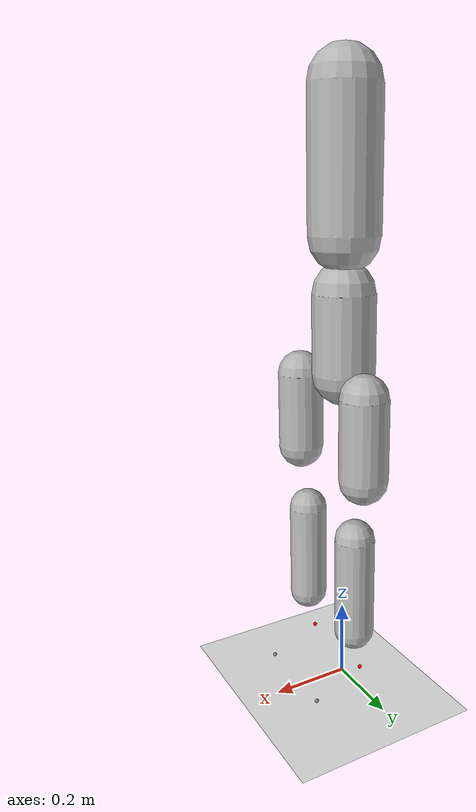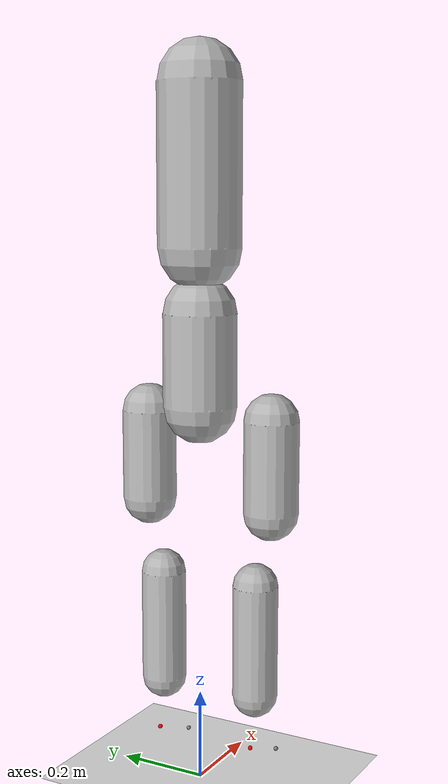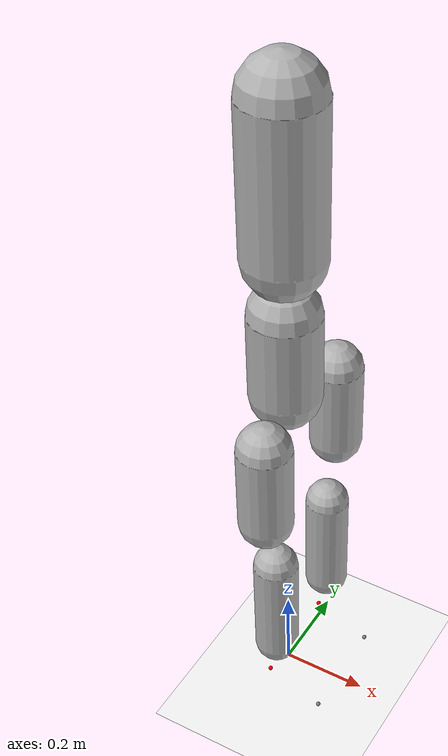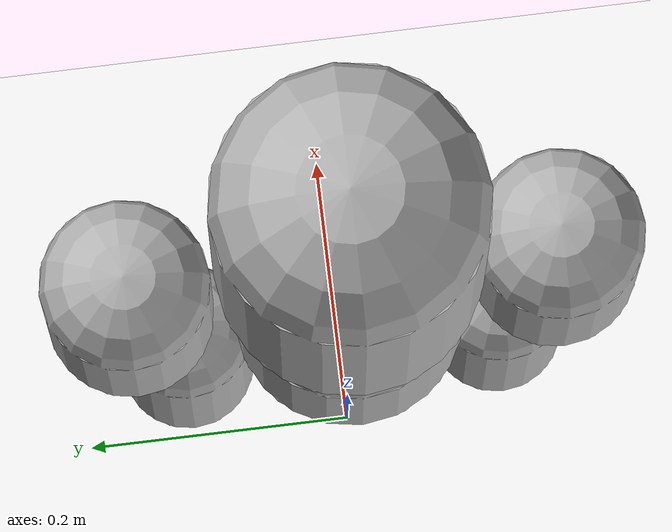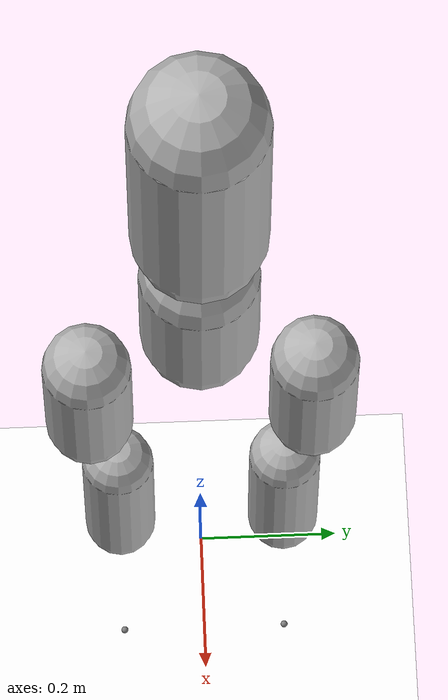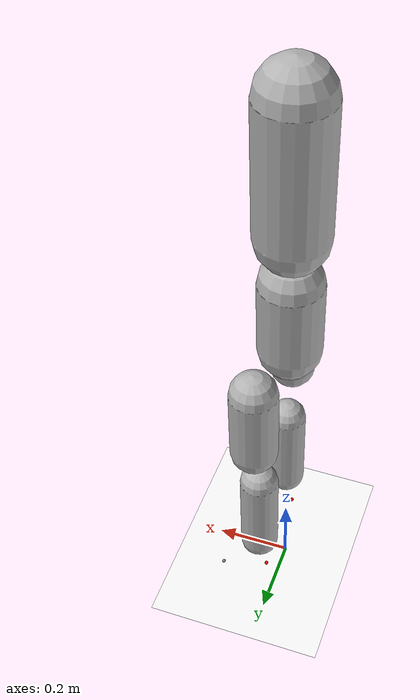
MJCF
<mujoco model="adam_lite_minimal scene">
    <include file="adam_lite_ultra_minimal.xml"/>

    <statistic center="0 0 0.7" extent="1.2" meansize="0.04"/>

    <visual>
        <headlight diffuse=".8 .8 .8" ambient=".2 .2 .2" specular="1 1 1"/>
        <rgba force="1 0 0 1"/>
        <global azimuth="140" elevation="-20"/>
        <map force="0.01"/>
        <scale forcewidth="0.3" contactwidth="0.5" contactheight="0.2"/>
        <quality shadowsize="8192"/>
    </visual>

    <asset>
        <texture type="skybox" builtin="gradient" rgb1="1 1 1" rgb2="1 1 1" width="800" height="800"/>
        <texture type="2d" name="groundplane" builtin="checker" mark="edge" rgb1="1 1 1" rgb2="1 1 1"
                 markrgb="0 0 0" width="300" height="300"/>
        <material name="groundplane" texture="groundplane" texuniform="true" texrepeat="5 5" reflectance="0"/>
    </asset>

    <worldbody>
        <geom name="floor" size="0 0 0.01" type="plane" material="groundplane"/>
    </worldbody>
</mujoco>

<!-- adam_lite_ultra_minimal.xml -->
<mujoco model="adam_lite_ultra_minimal">

  <compiler angle="radian" />

  <default>
    <default class="adam_lite">
      <geom condim="1" contype="0" conaffinity="0"/>
      <joint damping="0.05" armature="0.01" frictionloss="0.2"/>

      <default class="hip">
        <default class="hip_pitch">
          <joint axis="0 1 0" range="-2.164 2.164" actuatorfrcrange="-230 230" armature="0.01"/>
        </default>
        <default class="hip_roll">
          <joint axis="1 0 0" actuatorfrcrange="-160 160" armature="0.01"/>
        </default>
        <default class="hip_yaw">
          <joint axis="0 0 1" range="-0.785 0.785" actuatorfrcrange="-105 105" armature="0.01"/>
        </default>
      </default>
      <default class="knee">
        <joint axis="0 1 0" range="0.052 2.391" actuatorfrcrange="-230 230" armature="0.01"/>
      </default>
      <default class="ankle">
        <default class="ankle_pitch">
          <joint axis="0 1 0" range="-1 0.35" actuatorfrcrange="-40 40" armature="0.01"/>
        </default>
        <default class="ankle_roll">
          <joint axis="1 0 0" range="-0.3491 0.3491" actuatorfrcrange="-12 12" armature="0.01"/>
        </default>
      </default>
      <default class="waist">
        <default class="waist_roll">
          <joint axis="1 0 0" range="-0.279 0.279" actuatorfrcrange="-110 110" armature="0.01"/>
        </default>
        <default class="waist_pitch">
          <joint axis="0 1 0" range="-0.663 1.361" actuatorfrcrange="-110 110" armature="0.01"/>
        </default>
        <default class="waist_yaw">
          <joint axis="0 0 1" range="-0.829 0.829" actuatorfrcrange="-110 110" armature="0.01"/>
        </default>
      </default>
      <default class="shoulder">
        <default class="shoulder_pitch">
          <joint axis="0 1 0" range="-3.613 2.042" actuatorfrcrange="-65 65" armature="0.01"/>
        </default>
        <default class="shoulder_roll">
          <joint axis="1 0 0" actuatorfrcrange="-65 65" armature="0.01"/>
        </default>
        <default class="shoulder_yaw">
          <joint axis="0 0 1" range="-2.583 2.583" actuatorfrcrange="-65 65" armature="0.01"/>
        </default>
      </default>
      <default class="elbow">
        <joint axis="0 1 0" range="-2.496 0.209" actuatorfrcrange="-30 30" armature="0.01"/>
      </default>

      <default class="visual">
        <geom group="2" type="capsule" density="0" rgba="0.7 0.7 0.7 1"/>
      </default>
      <default class="collision">
        <geom group="3" rgba=".2 .6 .2 .3"/>
        <default class="foot">
          <geom size="0.1 0.04 0.005"/>
        </default>
      </default>
      <site group="5" rgba="1 0 0 1"/>
    </default>
  </default>

  <worldbody>
    <body name="pelvis" pos="0 0 0.95">
      <inertial pos="-0.00034724 0 -0.00735759" quat="0.502838 0.502859 -0.497127 0.497143" mass="10.3565" diaginertia="0.0687803 0.0621174 0.0345151" />
      <freejoint name="root"/>
      <geom class="visual" type="capsule" size="0.08" fromto="0 0 -0.1 0 0 0.1"/>
      <geom name="pelvis_collision" class="collision" type="sphere" size="0.08" pos="0 0 -0.08" contype="1" conaffinity="0"/>
      <site name="imu_in_pelvis" pos="0 0 0" />

      <!-- 左腿 -->
      <body name="hipPitchLeft" pos="0 0.0961925 -0.0332412" quat="0.953717 -0.300706 0 0">
        <inertial pos="-0.0566022 0.0576144 -0.00077159" quat="-0.0505313 0.548334 -0.448358 0.704097" mass="2.2338" diaginertia="0.00520115 0.00510328 0.00286381" />
        <joint name="hipPitch_Left" pos="0 0 0" axis="0 1 0" range="-2.164 2.164" actuatorfrcrange="-230 230" />
        <body name="hipRollLeft" pos="-0.0255 0.069 0" quat="0.953717 0.300706 0 0">
          <inertial pos="0.0392416 4.107e-05 -0.0103292" quat="0.0275849 0.82035 0.0241895 0.570683" mass="1.35108" diaginertia="0.00141452 0.00129056 0.00119603" />
          <joint name="hipRoll_Left" pos="0 0 0" axis="1 0 0" range="-0.733 1.605" actuatorfrcrange="-160 160" />
          <body name="thighLeft" pos="0.044 0 -0.0525">
            <inertial pos="0.00244052 -0.00866423 -0.134336" quat="0.711611 -0.0492483 0.0272749 0.700315" mass="6.43433" diaginertia="0.0639418 0.0583116 0.0126694" />
            <joint name="hipYaw_Left" pos="0 0 0" axis="0 0 1" range="-0.785 0.785" actuatorfrcrange="-105 105" />
            <geom class="visual" type="capsule" size="0.06" fromto="0.02 0 0 0.02 0 -0.20"/>
            <geom name="left_thigh" class="collision" type="capsule" size="0.06" fromto="0.02 0 0 0.02 0 -0.20"/>
            <body name="shinLeft" pos="0 -0.0355 -0.369">
              <inertial pos="-0.00053135 0.00081959 -0.145381" quat="0.788039 0.00408898 0.00696215 0.615572" mass="2.25363" diaginertia="0.0215921 0.0215141 0.00136466" />
              <joint name="kneePitch_Left" pos="0 0 0" axis="0 1 0" range="0.052 2.391" actuatorfrcrange="-230 230" />
              <geom class="visual" type="capsule" size="0.05" fromto="0.02 0 0 0.02 0 -0.25"/>
              <geom name="left_shin" class="collision" type="capsule" size="0.06" fromto="0.02 0 0 0.02 0 -0.25"/>
              <body name="anklePitchLeft" pos="0 0 -0.37">
                <inertial pos="0 0 0" mass="0.0301423" diaginertia="3.14e-06 3.14e-06 2.04e-06" />
                <joint name="anklePitch_Left" pos="0 0 0" axis="0 1 0" range="-1 0.35" actuatorfrcrange="-40 40" />
                <body name="toeLeft">
                  <site name="left_foot" rgba="1 0 0 1"/>
                  <site name="left_foot_top" pos="0.13 0 -0.054"/>
                  <inertial pos="0.0374997 -4.016e-05 -0.0419674" quat="-0.0209271 0.743591 -0.0168677 0.668094" mass="0.634796" diaginertia="0.00233488 0.00226889 0.000434699" />
                  <joint name="ankleRoll_Left" pos="0 0 0" axis="1 0 0" range="-0.3491 0.3491" actuatorfrcrange="-12 12" />
                  <geom name="left_foot" class="foot" size="0.12 0.05 0.01" pos="0.05 0 -0.055" type="box" rgba="0.752941 0.752941 0.752941 1" />
                </body>
              </body>
            </body>
          </body>
        </body>
      </body>

      <!-- 右腿 -->
      <body name="hipPitchRight" pos="0 -0.0961925 -0.0332412" quat="0.953717 0.300706 0 0">
        <inertial pos="-0.0566179 -0.0575934 -0.00078211" quat="0.0466125 0.551069 0.444978 0.704376" mass="2.23477" diaginertia="0.00520391 0.00510426 0.00286722" />
        <joint name="hipPitch_Right" pos="0 0 0" axis="0 1 0" range="-2.164 2.164" actuatorfrcrange="-230 230" />
        <body name="hipRollRight" pos="-0.0255 -0.069 0" quat="0.953717 -0.300706 0 0">
          <inertial pos="0.0392598 -5.814e-05 -0.0103241" quat="-0.02931 0.821547 -0.0263648 0.568776" mass="1.3517" diaginertia="0.00141668 0.00129138 0.00119538" />
          <joint name="hipRoll_Right" pos="0 0 0" axis="1 0 0" range="-1.605 0.733" actuatorfrcrange="-160 160" />
          <body name="thighRight" pos="0.044 0 -0.0525">
            <inertial pos="0.00245598 0.00865064 -0.134332" quat="0.700408 0.0274534 -0.0491764 0.711517" mass="6.43084" diaginertia="0.0639169 0.0582708 0.0126767" />
            <joint name="hipYaw_Right" pos="0 0 0" axis="0 0 1" range="-0.785 0.785" actuatorfrcrange="-105 105" />
            <geom class="visual" type="capsule" size="0.06" fromto="0.02 0 0 0.02 0 -0.20"/>
            <geom name="right_thigh" class="collision" type="capsule" size="0.06" fromto="0.02 0 0 0.02 0 -0.20"/>
            <body name="shinRight" pos="0 0.0355 -0.369">
              <inertial pos="-0.00052844 -0.00082152 -0.145334" quat="0.619488 0.00695186 0.00407547 0.784965" mass="2.25459" diaginertia="0.0215721 0.021496 0.00136482" />
              <joint name="kneePitch_Right" pos="0 0 0" axis="0 1 0" range="0.052 2.391" actuatorfrcrange="-230 230" />
              <geom class="visual" type="capsule" size="0.05" fromto="0.02 0 0 0.02 0 -0.25"/>
              <geom name="right_shin" class="collision" type="capsule" size="0.06" fromto="0.02 0 0 0.02 0 -0.25"/>
              <body name="anklePitchRight" pos="0 0 -0.37">
                <inertial pos="0 0 0" mass="0.0301423" diaginertia="3.14e-06 3.14e-06 2.04e-06" />
                <joint name="anklePitch_Right" pos="0 0 0" axis="0 1 0" range="-1 0.35" actuatorfrcrange="-40 40" />
                <body name="toeRight">
                  <site name="right_foot" rgba="1 0 0 1"/>
                  <site name="right_foot_top" pos="0.13 0 -0.054"/>
                  <inertial pos="0.0375023 4.002e-05 -0.0419671" quat="0.0209768 0.743592 0.0169235 0.66809" mass="0.634808" diaginertia="0.00233489 0.00226889 0.000434726" />
                  <joint name="ankleRoll_Right" pos="0 0 0" axis="1 0 0" range="-0.3491 0.3491" actuatorfrcrange="-12 12" />
                  <geom name="right_foot" class="foot" size="0.12 0.05 0.01" pos="0.05 0 -0.055" type="box" rgba="0.752941 0.752941 0.752941 1" />
                </body>
              </body>
            </body>
          </body>
        </body>
      </body>

      <!-- 躯干 -->
      <body name="waistRoll_link" pos="0 0 0.044">
        <inertial pos="0.00093826 0.00093832 0.0399999" quat="0.920274 -0.012433 -0.0050157 0.391045" mass="2.36268" diaginertia="0.00543214 0.00543129 0.00184735" />
        <joint name="waistRoll" pos="0 0 0" axis="1 0 0" range="-0.279 0.279" actuatorfrcrange="-110 110" />
        <body name="waistPitch_link" pos="0 0 0.08">
          <inertial pos="-8.401e-05 0.00189362 0.0254832" quat="0.480284 0.467519 -0.524152 0.525374" mass="0.563538" diaginertia="0.0015597 0.00151436 0.000672504" />
          <joint name="waistPitch" pos="0 0 0" axis="0 1 0" range="-0.663 1.361" actuatorfrcrange="-110 110" />
          <body name="torso" pos="0 0.0005 0.053">
            <inertial pos="-0.00183601 0.00056583 0.166624" quat="0.999918 0.00136566 0.0120111 0.00418418" mass="13.4634" diaginertia="0.211446 0.168649 0.0770067" />
            <joint name="waistYaw" pos="0 0 0" axis="0 0 1" range="-0.829 0.829" actuatorfrcrange="-110 110" />
            <geom class="visual" type="capsule" size="0.09" fromto="0 0 0.06 0 0 0.40"/>
            <geom name="torso" class="collision" type="capsule" size="0.09" fromto="0 0 0.06 0 0 0.40"/>

            <!-- 简化的上肢 - 只保留关节，无视觉mesh -->
            <body name="shoulderPitchLeft" pos="0 0.165094 0.25923" quat="0.984808 0.173648 0 0">
              <inertial pos="0.00542694 0.0268987 0.00010792" quat="-0.0545235 0.707235 0.0545271 0.702761" mass="0.216148" diaginertia="0.000380648 0.000322754 0.000187228" />
              <joint name="shoulderPitch_Left" pos="0 0 0" axis="0 1 0" range="-3.613 2.042" actuatorfrcrange="-65 65" />
              <body name="shoulderRollLeft" pos="0.0362 0.0435 0" quat="0.984808 -0.173648 0 0">
                <inertial pos="-0.0343733 0.00962154 -0.0154456" quat="0.942019 0.255487 0.0666284 -0.207093" mass="1.07882" diaginertia="0.00167363 0.00165995 0.000668084" />
                <joint name="shoulderRoll_Left" pos="0 0 0" axis="1 0 0" range="-0.628 2.793" actuatorfrcrange="-65 65" />
                <body name="shoulderYawLeft" pos="-0.0362 0.034 -0.0797">
                  <inertial pos="-0.00051421 -0.00044442 -0.0619328" quat="0.999912 -0.00948825 0.00877343 0.00302026" mass="0.90142" diaginertia="0.00328641 0.0031732 0.000574119" />
                  <joint name="shoulderYaw_Left" pos="0 0 0" axis="0 0 1" range="-2.583 2.583" actuatorfrcrange="-65 65" />
                  <body name="elbowLeft" pos="0 -0.0285 -0.18295">
                    <inertial pos="-0.0140727 0.0292971 -0.0253473" quat="0.716894 0.14594 0.188043 0.65529" mass="0.917707" diaginertia="0.00110505 0.00109887 0.000457654" />
                    <joint name="elbow_Left" pos="0 0 0" axis="0 1 0" range="-2.496 0.209" actuatorfrcrange="-30 30" />
                    <body name="wristYawLeft" pos="-0.025 0.0285 -0.0729">
                      <inertial pos="-1.685e-05 8.017e-05 -0.15736" quat="0.697434 0.000132018 -0.000320426 0.716649" mass="0.732343" diaginertia="0.00737681 0.00737465 0.000274077" />
                      <joint name="wristYaw_Left" pos="0 0 0" axis="0 0 1" actuatorfrcrange="-6.4 6.4" />
                    </body>
                  </body>
                </body>
              </body>
            </body>

            <body name="shoulderPitchRight" pos="0 -0.165094 0.25923" quat="0.984808 -0.173648 0 0">
              <inertial pos="0.00536737 -0.0269397 0.00010693" quat="0.0534521 0.70731 -0.0534944 0.702847" mass="0.216487" diaginertia="0.000381338 0.000323123 0.000187559" />
              <joint name="shoulderPitch_Right" pos="0 0 0" axis="0 1 0" range="-3.613 2.042" actuatorfrcrange="-65 65" />
              <body name="shoulderRollRight" pos="0.0362 -0.0435 0" quat="0.984808 0.173648 0 0">
                <inertial pos="-0.0342995 -0.00987424 -0.0157184" quat="0.935991 -0.254513 0.072526 0.232131" mass="1.08875" diaginertia="0.0017015 0.00168047 0.000675786" />
                <joint name="shoulderRoll_Right" pos="0 0 0" axis="1 0 0" range="-2.793 0.628" actuatorfrcrange="-65 65" />
                <body name="shoulderYawRight" pos="-0.0362 -0.034 -0.0797">
                  <inertial pos="-0.00051421 0.00044442 -0.0619328" quat="0.999912 0.00948825 -0.00877343 -0.00302026" mass="0.90142" diaginertia="0.00328641 0.0031732 0.000574119" />
                  <joint name="shoulderYaw_Right" pos="0 0 0" axis="0 0 1" range="-2.583 2.583" actuatorfrcrange="-65 65" />
                  <body name="elbowRight" pos="0 0.0285 -0.18295">
                    <inertial pos="-0.0140891 -0.0292958 -0.0253475" quat="0.638945 0.191038 0.141578 0.73158" mass="0.917707" diaginertia="0.00110466 0.00109851 0.000457521" />
                    <joint name="elbow_Right" pos="0 0 0" axis="0 1 0" range="-2.496 0.209" actuatorfrcrange="-30 30" />
                    <body name="wristYawRight" pos="-0.025 -0.0285 -0.0729">
                      <inertial pos="1.828e-05 -7.309e-05 -0.156668" quat="0.707356 -0.000166244 0.000366098 0.706857" mass="0.732844" diaginertia="0.00727528 0.00727317 0.000274245" />
                      <joint name="wristYaw_Right" pos="0 0 0" axis="0 0 1" actuatorfrcrange="-6.4 6.4" />
                    </body>
                  </body>
                </body>
              </body>
            </body>
          </body>
        </body>
      </body>
    </body>
  </worldbody>

  <actuator>
    <motor name="hipPitch_Left" joint="hipPitch_Left" gear="1"/>
    <motor name="hipRoll_Left" joint="hipRoll_Left" gear="1"/>
    <motor name="hipYaw_Left" joint="hipYaw_Left" gear="1"/>
    <motor name="kneePitch_Left" joint="kneePitch_Left" gear="1"/>
    <motor name="anklePitch_Left" joint="anklePitch_Left" gear="1"/>
    <motor name="ankleRoll_Left" joint="ankleRoll_Left" gear="1"/>
    <motor name="hipPitch_Right" joint="hipPitch_Right" gear="1"/>
    <motor name="hipRoll_Right" joint="hipRoll_Right" gear="1"/>
    <motor name="hipYaw_Right" joint="hipYaw_Right" gear="1"/>
    <motor name="kneePitch_Right" joint="kneePitch_Right" gear="1"/>
    <motor name="anklePitch_Right" joint="anklePitch_Right" gear="1"/>
    <motor name="ankleRoll_Right" joint="ankleRoll_Right" gear="1"/>
    <motor name="waistRoll" joint="waistRoll" gear="1"/>
    <motor name="waistPitch" joint="waistPitch" gear="1"/>
    <motor name="waistYaw" joint="waistYaw" gear="1"/>
    <motor name="shoulderPitch_Left" joint="shoulderPitch_Left" gear="1"/>
    <motor name="shoulderRoll_Left" joint="shoulderRoll_Left" gear="1"/>
    <motor name="shoulderYaw_Left" joint="shoulderYaw_Left" gear="1"/>
    <motor name="elbow_Left" joint="elbow_Left" gear="1"/>
    <motor name="wristYaw_Left" joint="wristYaw_Left" gear="1"/>
    <motor name="shoulderPitch_Right" joint="shoulderPitch_Right" gear="1"/>
    <motor name="shoulderRoll_Right" joint="shoulderRoll_Right" gear="1"/>
    <motor name="shoulderYaw_Right" joint="shoulderYaw_Right" gear="1"/>
    <motor name="elbow_Right" joint="elbow_Right" gear="1"/>
    <motor name="wristYaw_Right" joint="wristYaw_Right" gear="1"/>
  </actuator>

  <sensor>
    <jointpos name="pos_hipPitch_Left" joint="hipPitch_Left" />
    <jointpos name="pos_hipRoll_Left" joint="hipRoll_Left" />
    <jointpos name="pos_hipYaw_Left" joint="hipYaw_Left" />
    <jointpos name="pos_kneePitch_Left" joint="kneePitch_Left" />
    <jointpos name="pos_anklePitch_Left" joint="anklePitch_Left" />
    <jointpos name="pos_ankleRoll_Left" joint="ankleRoll_Left" />
    <jointpos name="pos_hipPitch_Right" joint="hipPitch_Right" />
    <jointpos name="pos_hipRoll_Right" joint="hipRoll_Right" />
    <jointpos name="pos_hipYaw_Right" joint="hipYaw_Right" />
    <jointpos name="pos_kneePitch_Right" joint="kneePitch_Right" />
    <jointpos name="pos_anklePitch_Right" joint="anklePitch_Right" />
    <jointpos name="pos_ankleRoll_Right" joint="ankleRoll_Right" />
    <jointpos name="pos_waistRoll" joint="waistRoll" />
    <jointpos name="pos_waistPitch" joint="waistPitch" />
    <jointpos name="pos_waistYaw" joint="waistYaw" />
    <jointpos name="pos_shoulderPitch_Left" joint="shoulderPitch_Left" />
    <jointpos name="pos_shoulderRoll_Left" joint="shoulderRoll_Left" />
    <jointpos name="pos_shoulderYaw_Left" joint="shoulderYaw_Left" />
    <jointpos name="pos_elbow_Left" joint="elbow_Left" />
    <jointpos name="pos_wristYaw_Left" joint="wristYaw_Left" />
    <jointpos name="pos_shoulderPitch_Right" joint="shoulderPitch_Right" />
    <jointpos name="pos_shoulderRoll_Right" joint="shoulderRoll_Right" />
    <jointpos name="pos_shoulderYaw_Right" joint="shoulderYaw_Right" />
    <jointpos name="pos_elbow_Right" joint="elbow_Right" />
    <jointpos name="pos_wristYaw_Right" joint="wristYaw_Right" />
    <jointvel name="vel_hipPitch_Left" joint="hipPitch_Left" />
    <jointvel name="vel_hipRoll_Left" joint="hipRoll_Left" />
    <jointvel name="vel_hipYaw_Left" joint="hipYaw_Left" />
    <jointvel name="vel_kneePitch_Left" joint="kneePitch_Left" />
    <jointvel name="vel_anklePitch_Left" joint="anklePitch_Left" />
    <jointvel name="vel_ankleRoll_Left" joint="ankleRoll_Left" />
    <jointvel name="vel_hipPitch_Right" joint="hipPitch_Right" />
    <jointvel name="vel_hipRoll_Right" joint="hipRoll_Right" />
    <jointvel name="vel_hipYaw_Right" joint="hipYaw_Right" />
    <jointvel name="vel_kneePitch_Right" joint="kneePitch_Right" />
    <jointvel name="vel_anklePitch_Right" joint="anklePitch_Right" />
    <jointvel name="vel_ankleRoll_Right" joint="ankleRoll_Right" />
    <jointvel name="vel_waistRoll" joint="waistRoll" />
    <jointvel name="vel_waistPitch" joint="waistPitch" />
    <jointvel name="vel_waistYaw" joint="waistYaw" />
    <jointvel name="vel_shoulderPitch_Left" joint="shoulderPitch_Left" />
    <jointvel name="vel_shoulderRoll_Left" joint="shoulderRoll_Left" />
    <jointvel name="vel_shoulderYaw_Left" joint="shoulderYaw_Left" />
    <jointvel name="vel_elbow_Left" joint="elbow_Left" />
    <jointvel name="vel_wristYaw_Left" joint="wristYaw_Left" />
    <jointvel name="vel_shoulderPitch_Right" joint="shoulderPitch_Right" />
    <jointvel name="vel_shoulderRoll_Right" joint="shoulderRoll_Right" />
    <jointvel name="vel_shoulderYaw_Right" joint="shoulderYaw_Right" />
    <jointvel name="vel_elbow_Right" joint="elbow_Right" />
    <jointvel name="vel_wristYaw_Right" joint="wristYaw_Right" />
    <accelerometer name="accelerometer" site="imu_in_pelvis" />
    <gyro name="gyro" site="imu_in_pelvis" />
  </sensor>

  <contact>
    <pair name="left_foot_floor" geom1="left_foot" geom2="floor" condim="3" friction="0.6 0.6"/>
    <pair name="right_foot_floor" geom1="right_foot" geom2="floor" condim="3" friction="0.6 0.6"/>
    <pair name="left_shin_floor" geom1="left_shin" geom2="floor" condim="3" friction="0.6 0.6"/>
    <pair name="right_shin_floor" geom1="right_shin" geom2="floor" condim="3" friction="0.6 0.6"/>
    <pair name="pelvis_floor" geom1="pelvis_collision" geom2="floor" condim="3" friction="0.6 0.6"/>
    <pair name="torso_floor" geom1="torso" geom2="floor" condim="3" friction="0.6 0.6"/>
  </contact>
</mujoco>
